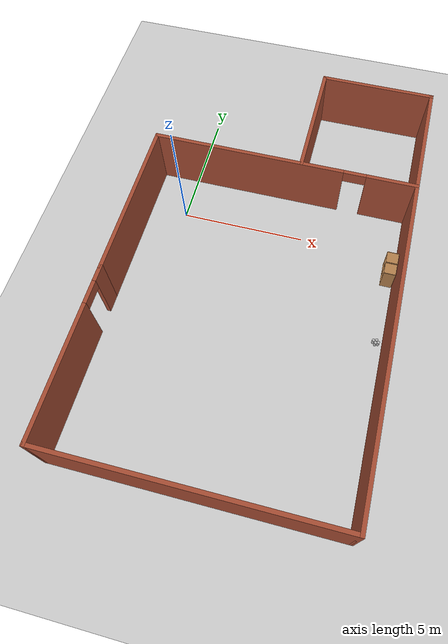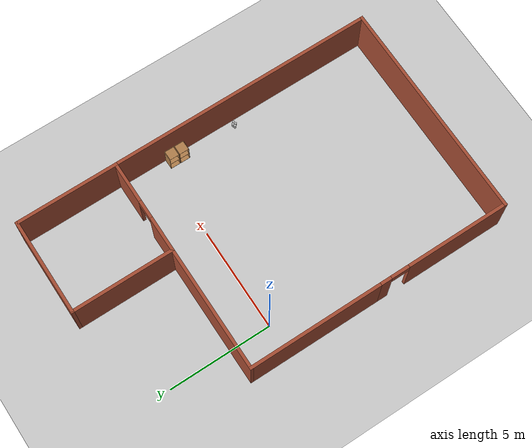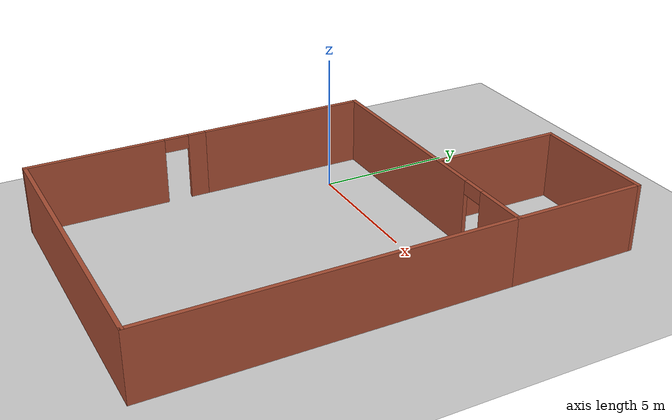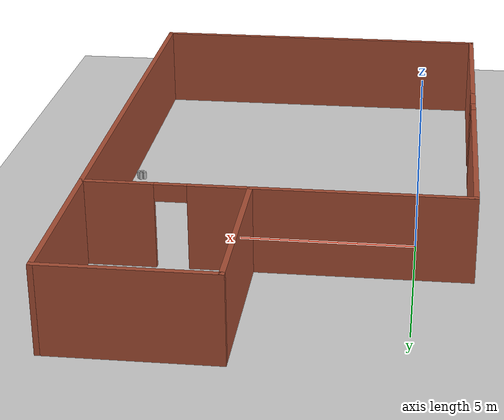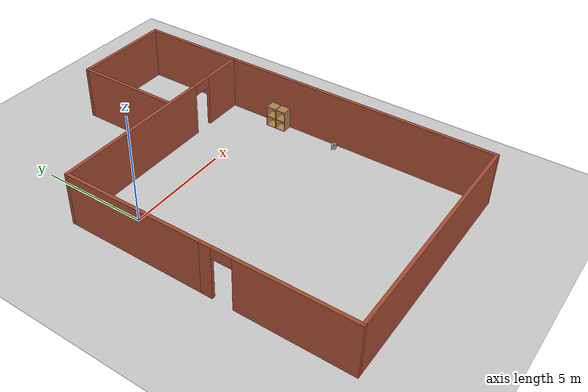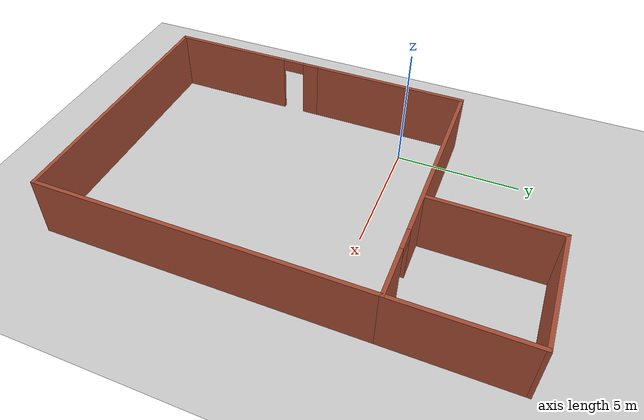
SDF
<sdf version="1.7">
 <world name="default">
  <model name="ground_plane">
   <static>1</static>
   <link name="link">
    <collision name="collision">
     <geometry><plane><normal>0 0 1</normal><size>100 100</size></plane></geometry>
     <surface><friction><ode><mu>100</mu><mu2>50</mu2></ode></friction></surface>
    </collision>
    <visual name="visual">
     <cast_shadows>0</cast_shadows>
     <geometry><plane><normal>0 0 1</normal><size>100 100</size></plane></geometry>
     <material>
      <script><uri>file://media/materials/scripts/gazebo.material</uri><name>Gazebo/Grey</name></script>
     </material>
    </visual>
   </link>
  </model>
  <light name="sun" type="directional">
   <pose>0 0 10 0 -0 0</pose>
   <diffuse>0.8 0.8 0.8 1</diffuse>
   <specular>0.2 0.2 0.2 1</specular>
   <attenuation>
    <range>1000</range>
    <constant>0.9</constant>
    <linear>0.01</linear>
    <quadratic>0.001</quadratic>
   </attenuation>
   <direction>-0.5 0.1 -0.9</direction>
   <spot><inner_angle>0</inner_angle><outer_angle>0</outer_angle><falloff>0</falloff></spot>
  </light>
  <scene><shadows>0</shadows><ambient>0.4 0.4 0.4 1</ambient><background>0.7 0.7 0.7 1</background></scene>
  <physics type="ode">
   <real_time_update_rate>1000</real_time_update_rate>
   <max_step_size>0.001</max_step_size>
   <real_time_factor>1</real_time_factor>
   <ode>
    <solver>
     <type>quick</type>
     <iters>150</iters>
     <precon_iters>0</precon_iters>
     <sor>1.4</sor>
     <use_dynamic_moi_rescaling>1</use_dynamic_moi_rescaling>
    </solver>
    <constraints>
     <cfm>1e-05</cfm>
     <erp>0.2</erp>
     <contact_max_correcting_vel>2000</contact_max_correcting_vel>
     <contact_surface_layer>0.01</contact_surface_layer>
    </constraints>
   </ode>
  </physics>
  <gravity>0 0 -9.8</gravity>
  <magnetic_field>6e-06 2.3e-05 -4.2e-05</magnetic_field>
  <atmosphere type="adiabatic"/>
  <audio><device>default</device></audio>
  <spherical_coordinates>
   <surface_model>EARTH_WGS84</surface_model>
   <latitude_deg>0</latitude_deg>
   <longitude_deg>0</longitude_deg>
   <elevation>0</elevation>
   <heading_deg>0</heading_deg>
  </spherical_coordinates>
  <model name="MurosV1">
   <pose>3.73691 -2.06186 0 0 -0 0</pose>
   <link name="Wall_16">
    <pose>-5.3 -5.6 0 0 -0 -1.5708</pose>
    <visual name="Wall_16_Visual_0">
     <pose>-2.98755 0 1.25 0 -0 0</pose>
     <geometry><box><size>0.674893 0.15 2.5</size></box></geometry>
     <material>
      <script><uri>file://media/materials/scripts/gazebo.material</uri><name>Gazebo/Bricks</name></script>
      <ambient>1 1 1 1</ambient>
     </material>
     <meta><layer>0</layer></meta>
    </visual>
    <collision name="Wall_16_Collision_0">
     <geometry><box><size>0.674893 0.15 2.5</size></box></geometry>
     <pose>-2.98755 0 1.25 0 -0 0</pose>
    </collision>
    <visual name="Wall_16_Visual_1">
     <pose>0.787446 0 1.25 0 -0 0</pose>
     <geometry><box><size>5.07511 0.15 2.5</size></box></geometry>
     <material>
      <script><uri>file://media/materials/scripts/gazebo.material</uri><name>Gazebo/Bricks</name></script>
      <ambient>1 1 1 1</ambient>
     </material>
     <meta><layer>0</layer></meta>
    </visual>
    <collision name="Wall_16_Collision_1">
     <geometry><box><size>5.07511 0.15 2.5</size></box></geometry>
     <pose>0.787446 0 1.25 0 -0 0</pose>
    </collision>
    <visual name="Wall_16_Visual_2">
     <pose>-2.20011 0 2.25 0 -0 0</pose>
     <geometry><box><size>0.9 0.15 0.5</size></box></geometry>
     <material>
      <script><uri>file://media/materials/scripts/gazebo.material</uri><name>Gazebo/Bricks</name></script>
      <ambient>1 1 1 1</ambient>
     </material>
     <meta><layer>0</layer></meta>
    </visual>
    <collision name="Wall_16_Collision_2">
     <geometry><box><size>0.9 0.15 0.5</size></box></geometry>
     <pose>-2.20011 0 2.25 0 -0 0</pose>
    </collision>
   </link>
   <link name="Wall_20">
    <collision name="Wall_20_Collision">
     <geometry><box><size>6.5 0.15 2.5</size></box></geometry>
     <pose>0 0 1.25 0 -0 0</pose>
    </collision>
    <visual name="Wall_20_Visual">
     <pose>0 0 1.25 0 -0 0</pose>
     <geometry><box><size>6.5 0.15 2.5</size></box></geometry>
     <material>
      <script><uri>file://media/materials/scripts/gazebo.material</uri><name>Gazebo/Bricks</name></script>
      <ambient>1 1 1 1</ambient>
     </material>
     <meta><layer>0</layer></meta>
    </visual>
    <pose>-5.3 0.825 0 0 -0 -1.5708</pose>
   </link>
   <link name="Wall_31">
    <collision name="Wall_31_Collision">
     <geometry><box><size>10.75 0.15 2.5</size></box></geometry>
     <pose>0 0 1.25 0 -0 0</pose>
    </collision>
    <visual name="Wall_31_Visual">
     <pose>0 0 1.25 0 -0 0</pose>
     <geometry><box><size>10.75 0.15 2.5</size></box></geometry>
     <material>
      <script><uri>file://media/materials/scripts/gazebo.material</uri><name>Gazebo/Bricks</name></script>
      <ambient>1 1 1 1</ambient>
     </material>
     <meta><layer>0</layer></meta>
    </visual>
    <pose>-0 -8.85 0 0 -0 0</pose>
   </link>
   <link name="Wall_32">
    <collision name="Wall_32_Collision">
     <geometry><box><size>13 0.15 2.5</size></box></geometry>
     <pose>0 0 1.25 0 -0 0</pose>
    </collision>
    <visual name="Wall_32_Visual">
     <pose>0 0 1.25 0 -0 0</pose>
     <geometry><box><size>13 0.15 2.5</size></box></geometry>
     <material>
      <script><uri>file://media/materials/scripts/gazebo.material</uri><name>Gazebo/Bricks</name></script>
      <ambient>1 1 1 1</ambient>
     </material>
     <meta><layer>0</layer></meta>
    </visual>
    <pose>5.3 -2.425 0 0 -0 1.5708</pose>
   </link>
   <link name="Wall_34">
    <pose>-0 4 0 0 -0 3.14159</pose>
    <visual name="Wall_34_Visual_0">
     <pose>-4.34065 0 1.25 0 -0 0</pose>
     <geometry><box><size>2.0687 0.15 2.5</size></box></geometry>
     <material>
      <script><uri>file://media/materials/scripts/gazebo.material</uri><name>Gazebo/Bricks</name></script>
      <ambient>1 1 1 1</ambient>
     </material>
     <meta><layer>0</layer></meta>
    </visual>
    <collision name="Wall_34_Collision_0">
     <geometry><box><size>2.0687 0.15 2.5</size></box></geometry>
     <pose>-4.34065 0 1.25 0 -0 0</pose>
    </collision>
    <visual name="Wall_34_Visual_1">
     <pose>1.48435 0 1.25 0 -0 0</pose>
     <geometry><box><size>7.7813 0.15 2.5</size></box></geometry>
     <material>
      <script><uri>file://media/materials/scripts/gazebo.material</uri><name>Gazebo/Bricks</name></script>
      <ambient>1 1 1 1</ambient>
     </material>
     <meta><layer>0</layer></meta>
    </visual>
    <collision name="Wall_34_Collision_1">
     <geometry><box><size>7.7813 0.15 2.5</size></box></geometry>
     <pose>1.48435 0 1.25 0 -0 0</pose>
    </collision>
    <visual name="Wall_34_Visual_2">
     <pose>-2.8563 0 2.25 0 -0 0</pose>
     <geometry><box><size>0.9 0.15 0.5</size></box></geometry>
     <material>
      <script><uri>file://media/materials/scripts/gazebo.material</uri><name>Gazebo/Bricks</name></script>
      <ambient>1 1 1 1</ambient>
     </material>
     <meta><layer>0</layer></meta>
    </visual>
    <collision name="Wall_34_Collision_2">
     <geometry><box><size>0.9 0.15 0.5</size></box></geometry>
     <pose>-2.8563 0 2.25 0 -0 0</pose>
    </collision>
   </link>
   <link name="Wall_36">
    <collision name="Wall_36_Collision">
     <geometry><box><size>5 0.15 2.5</size></box></geometry>
     <pose>0 0 1.25 0 -0 0</pose>
    </collision>
    <visual name="Wall_36_Visual">
     <pose>0 0 1.25 0 -0 0</pose>
     <geometry><box><size>5 0.15 2.5</size></box></geometry>
     <material>
      <script><uri>file://media/materials/scripts/gazebo.material</uri><name>Gazebo/Bricks</name></script>
      <ambient>1 1 1 1</ambient>
     </material>
     <meta><layer>0</layer></meta>
    </visual>
    <pose>5.3 6.425 0 0 -0 1.5708</pose>
   </link>
   <link name="Wall_37">
    <collision name="Wall_37_Collision">
     <geometry><box><size>4.75 0.15 2.5</size></box></geometry>
     <pose>0 0 1.25 0 -0 0</pose>
    </collision>
    <visual name="Wall_37_Visual">
     <pose>0 0 1.25 0 -0 0</pose>
     <geometry><box><size>4.75 0.15 2.5</size></box></geometry>
     <material>
      <script><uri>file://media/materials/scripts/gazebo.material</uri><name>Gazebo/Bricks</name></script>
      <ambient>1 1 1 1</ambient>
     </material>
     <meta><layer>0</layer></meta>
    </visual>
    <pose>3 8.85 0 0 -0 3.14159</pose>
   </link>
   <link name="Wall_38">
    <collision name="Wall_38_Collision">
     <geometry><box><size>5 0.15 2.5</size></box></geometry>
     <pose>0 0 1.25 0 -0 0</pose>
    </collision>
    <visual name="Wall_38_Visual">
     <pose>0 0 1.25 0 -0 0</pose>
     <geometry><box><size>5 0.15 2.5</size></box></geometry>
     <material>
      <script><uri>file://media/materials/scripts/gazebo.material</uri><name>Gazebo/Bricks</name></script>
      <ambient>1 1 1 1</ambient>
     </material>
     <meta><layer>0</layer></meta>
    </visual>
    <pose>0.7 6.425 0 0 -0 -1.5708</pose>
   </link>
   <static>1</static>
  </model>
  <model name="beer">
   <link name="link">
    <pose>0 0 0.115 0 -0 0</pose>
    <inertial>
     <mass>0.39</mass>
     <inertia><ixx>0.00058</ixx><ixy>0</ixy><ixz>0</ixz><iyy>0.00058</iyy><iyz>0</iyz><izz>0.00019</izz></inertia>
    </inertial>
    <collision name="collision">
     <geometry><cylinder><radius>0.055</radius><length>0.23</length></cylinder></geometry>
    </collision>
    <visual name="visual">
     <geometry><cylinder><radius>0.055</radius><length>0.23</length></cylinder></geometry>
     <material>
      <script>
       <uri>model://beer/materials/scripts</uri>
       <uri>model://beer/materials/textures</uri>
       <name>Beer/Diffuse</name>
      </script>
     </material>
    </visual>
   </link>
   <pose>8.72713 -3.78079 -4e-06 -4e-06 1e-06 -0.0171</pose>
  </model>
  <model name="beer_clone">
   <link name="link">
    <pose>0 0 0.115 0 -0 0</pose>
    <inertial>
     <mass>0.39</mass>
     <inertia><ixx>0.00058</ixx><ixy>0</ixy><ixz>0</ixz><iyy>0.00058</iyy><iyz>0</iyz><izz>0.00019</izz></inertia>
    </inertial>
    <collision name="collision">
     <geometry><cylinder><radius>0.055</radius><length>0.23</length></cylinder></geometry>
    </collision>
    <visual name="visual">
     <geometry><cylinder><radius>0.055</radius><length>0.23</length></cylinder></geometry>
     <material>
      <script>
       <uri>model://beer/materials/scripts</uri>
       <uri>model://beer/materials/textures</uri>
       <name>Beer/Diffuse</name>
      </script>
     </material>
    </visual>
   </link>
   <pose>8.61324 -3.81678 -1e-06 6e-06 -2e-06 0</pose>
  </model>
  <model name="beer_clone_0">
   <link name="link">
    <pose>0 0 0.115 0 -0 0</pose>
    <inertial>
     <mass>0.39</mass>
     <inertia><ixx>0.00058</ixx><ixy>0</ixy><ixz>0</ixz><iyy>0.00058</iyy><iyz>0</iyz><izz>0.00019</izz></inertia>
    </inertial>
    <collision name="collision">
     <geometry><cylinder><radius>0.055</radius><length>0.23</length></cylinder></geometry>
    </collision>
    <visual name="visual">
     <geometry><cylinder><radius>0.055</radius><length>0.23</length></cylinder></geometry>
     <material>
      <script>
       <uri>model://beer/materials/scripts</uri>
       <uri>model://beer/materials/textures</uri>
       <name>Beer/Diffuse</name>
      </script>
     </material>
    </visual>
   </link>
   <pose>8.70095 -3.89731 -0 5e-06 0 0.379754</pose>
  </model>
  <model name="beer_clone_1">
   <link name="link">
    <pose>0 0 0.115 0 -0 0</pose>
    <inertial>
     <mass>0.39</mass>
     <inertia><ixx>0.00058</ixx><ixy>0</ixy><ixz>0</ixz><iyy>0.00058</iyy><iyz>0</iyz><izz>0.00019</izz></inertia>
    </inertial>
    <collision name="collision">
     <geometry><cylinder><radius>0.055</radius><length>0.23</length></cylinder></geometry>
    </collision>
    <visual name="visual">
     <geometry><cylinder><radius>0.055</radius><length>0.23</length></cylinder></geometry>
     <material>
      <script>
       <uri>model://beer/materials/scripts</uri>
       <uri>model://beer/materials/textures</uri>
       <name>Beer/Diffuse</name>
      </script>
     </material>
    </visual>
   </link>
   <pose>8.8042 -3.85933 -4e-06 -4e-06 -0 -0.008253</pose>
  </model>
  <model name="cabinet">
   <static>1</static>
   <link name="cabinet_bottom_plate">
    <inertial>
     <pose>0 0 -1 0 -0 0</pose>
     <inertia><ixx>2.05</ixx><ixy>0</ixy><ixz>0</ixz><iyy>2.05</iyy><iyz>0</iyz><izz>2.05</izz></inertia>
     <mass>25</mass>
    </inertial>
    <collision name="cabinet_bottom_plate_geom">
     <pose>0 0 0.01 0 -0 0</pose>
     <geometry><box><size>0.45 0.45 0.02</size></box></geometry>
    </collision>
    <visual name="cabinet_bottom_plate_geom_visual">
     <pose>0 0 0.01 0 -0 0</pose>
     <geometry><box><size>0.45 0.45 0.02</size></box></geometry>
     <material>
      <script><uri>file://media/materials/scripts/gazebo.material</uri><name>Gazebo/Wood</name></script>
     </material>
    </visual>
    <collision name="cabinet_bottom_plate_geom_cabinet_back_plate">
     <pose>0.235 0 0.51 0 -0 0</pose>
     <geometry><box><size>0.02 0.45 1.02</size></box></geometry>
    </collision>
    <visual name="cabinet_bottom_plate_geom_cabinet_back_plate_visual">
     <pose>0.235 0 0.51 0 -0 0</pose>
     <geometry><box><size>0.02 0.45 1.02</size></box></geometry>
     <material>
      <script><uri>file://media/materials/scripts/gazebo.material</uri><name>Gazebo/Wood</name></script>
     </material>
    </visual>
    <collision name="cabinet_bottom_plate_geom_cabinet_left_plate">
     <pose>0 0.235 0.51 0 -0 0</pose>
     <geometry><box><size>0.45 0.02 1.02</size></box></geometry>
    </collision>
    <visual name="cabinet_bottom_plate_geom_cabinet_left_plate_visual">
     <pose>0 0.235 0.51 0 -0 0</pose>
     <geometry><box><size>0.45 0.02 1.02</size></box></geometry>
     <material>
      <script><uri>file://media/materials/scripts/gazebo.material</uri><name>Gazebo/Wood</name></script>
     </material>
    </visual>
    <collision name="cabinet_bottom_plate_geom_cabinet_middle_plate">
     <pose>0 0 0.51 0 -0 0</pose>
     <geometry><box><size>0.45 0.45 0.02</size></box></geometry>
    </collision>
    <visual name="cabinet_bottom_plate_geom_cabinet_middle_plate_visual">
     <pose>0 0 0.51 0 -0 0</pose>
     <geometry><box><size>0.45 0.45 0.02</size></box></geometry>
     <material>
      <script><uri>file://media/materials/scripts/gazebo.material</uri><name>Gazebo/Wood</name></script>
     </material>
    </visual>
    <collision name="cabinet_bottom_plate_geom_cabinet_right_plate">
     <pose>0 -0.235 0.51 0 -0 0</pose>
     <geometry><box><size>0.45 0.02 1.02</size></box></geometry>
    </collision>
    <visual name="cabinet_bottom_plate_geom_cabinet_right_plate_visual">
     <pose>0 -0.235 0.51 0 -0 0</pose>
     <geometry><box><size>0.45 0.02 1.02</size></box></geometry>
     <material>
      <script><uri>file://media/materials/scripts/gazebo.material</uri><name>Gazebo/Wood</name></script>
     </material>
    </visual>
    <collision name="cabinet_bottom_plate_geom_cabinet_top_plate">
     <pose>0 0 1.01 0 -0 0</pose>
     <geometry><box><size>0.45 0.45 0.02</size></box></geometry>
    </collision>
    <visual name="cabinet_bottom_plate_geom_cabinet_top_plate_visual">
     <pose>0 0 1.01 0 -0 0</pose>
     <geometry><box><size>0.45 0.45 0.02</size></box></geometry>
     <material>
      <script><uri>file://media/materials/scripts/gazebo.material</uri><name>Gazebo/Wood</name></script>
     </material>
    </visual>
   </link>
   <pose>8.71242 -0.575135 0 0 -0 0</pose>
  </model>
  <model name="cabinet_clone">
   <static>1</static>
   <link name="cabinet_bottom_plate">
    <inertial>
     <pose>0 0 -1 0 -0 0</pose>
     <inertia><ixx>2.05</ixx><ixy>0</ixy><ixz>0</ixz><iyy>2.05</iyy><iyz>0</iyz><izz>2.05</izz></inertia>
     <mass>25</mass>
    </inertial>
    <collision name="cabinet_bottom_plate_geom">
     <pose>0 0 0.01 0 -0 0</pose>
     <geometry><box><size>0.45 0.45 0.02</size></box></geometry>
    </collision>
    <visual name="cabinet_bottom_plate_geom_visual">
     <pose>0 0 0.01 0 -0 0</pose>
     <geometry><box><size>0.45 0.45 0.02</size></box></geometry>
     <material>
      <script><uri>file://media/materials/scripts/gazebo.material</uri><name>Gazebo/Wood</name></script>
     </material>
    </visual>
    <collision name="cabinet_bottom_plate_geom_cabinet_back_plate">
     <pose>0.235 0 0.51 0 -0 0</pose>
     <geometry><box><size>0.02 0.45 1.02</size></box></geometry>
    </collision>
    <visual name="cabinet_bottom_plate_geom_cabinet_back_plate_visual">
     <pose>0.235 0 0.51 0 -0 0</pose>
     <geometry><box><size>0.02 0.45 1.02</size></box></geometry>
     <material>
      <script><uri>file://media/materials/scripts/gazebo.material</uri><name>Gazebo/Wood</name></script>
     </material>
    </visual>
    <collision name="cabinet_bottom_plate_geom_cabinet_left_plate">
     <pose>0 0.235 0.51 0 -0 0</pose>
     <geometry><box><size>0.45 0.02 1.02</size></box></geometry>
    </collision>
    <visual name="cabinet_bottom_plate_geom_cabinet_left_plate_visual">
     <pose>0 0.235 0.51 0 -0 0</pose>
     <geometry><box><size>0.45 0.02 1.02</size></box></geometry>
     <material>
      <script><uri>file://media/materials/scripts/gazebo.material</uri><name>Gazebo/Wood</name></script>
     </material>
    </visual>
    <collision name="cabinet_bottom_plate_geom_cabinet_middle_plate">
     <pose>0 0 0.51 0 -0 0</pose>
     <geometry><box><size>0.45 0.45 0.02</size></box></geometry>
    </collision>
    <visual name="cabinet_bottom_plate_geom_cabinet_middle_plate_visual">
     <pose>0 0 0.51 0 -0 0</pose>
     <geometry><box><size>0.45 0.45 0.02</size></box></geometry>
     <material>
      <script><uri>file://media/materials/scripts/gazebo.material</uri><name>Gazebo/Wood</name></script>
     </material>
    </visual>
    <collision name="cabinet_bottom_plate_geom_cabinet_right_plate">
     <pose>0 -0.235 0.51 0 -0 0</pose>
     <geometry><box><size>0.45 0.02 1.02</size></box></geometry>
    </collision>
    <visual name="cabinet_bottom_plate_geom_cabinet_right_plate_visual">
     <pose>0 -0.235 0.51 0 -0 0</pose>
     <geometry><box><size>0.45 0.02 1.02</size></box></geometry>
     <material>
      <script><uri>file://media/materials/scripts/gazebo.material</uri><name>Gazebo/Wood</name></script>
     </material>
    </visual>
    <collision name="cabinet_bottom_plate_geom_cabinet_top_plate">
     <pose>0 0 1.01 0 -0 0</pose>
     <geometry><box><size>0.45 0.45 0.02</size></box></geometry>
    </collision>
    <visual name="cabinet_bottom_plate_geom_cabinet_top_plate_visual">
     <pose>0 0 1.01 0 -0 0</pose>
     <geometry><box><size>0.45 0.45 0.02</size></box></geometry>
     <material>
      <script><uri>file://media/materials/scripts/gazebo.material</uri><name>Gazebo/Wood</name></script>
     </material>
    </visual>
   </link>
   <pose>8.70829 -1.07549 0 0 -0 0</pose>
  </model>
 </world>
</sdf>
